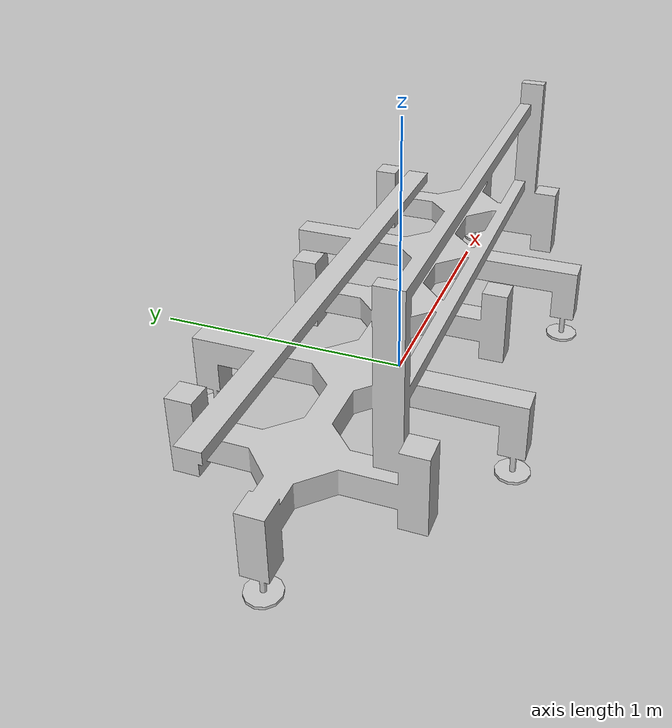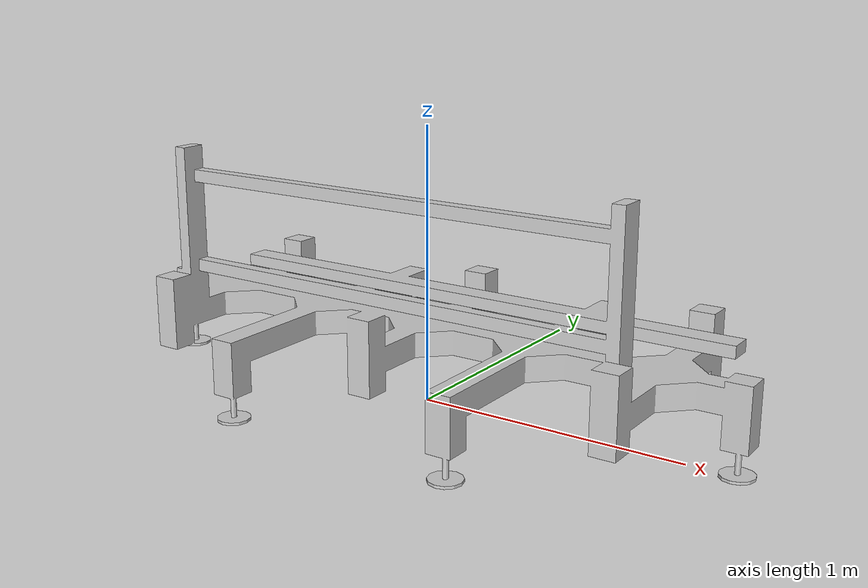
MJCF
<mujoco model="clr_base">
  <default>
    <default class="visual">
      <geom group="2" type="mesh" contype="0" conaffinity="0"/>
    </default>
    <default class="collision">
      <geom group="3" type="mesh"/>
    </default>
  </default>
  <asset>
    <material name="material_clr_base_0" specular="0.20000000000000004" shininess="1.0" rgba="0.80000000 0.80000000 0.80000000 1.0"/>
    <mesh file="clr_base.obj"/>
    <mesh file="clr_base_collision_0.obj"/>
    <mesh file="clr_base_collision_1.obj"/>
    <mesh file="clr_base_collision_2.obj"/>
    <mesh file="clr_base_collision_3.obj"/>
    <mesh file="clr_base_collision_4.obj"/>
    <mesh file="clr_base_collision_5.obj"/>
    <mesh file="clr_base_collision_6.obj"/>
    <mesh file="clr_base_collision_7.obj"/>
    <mesh file="clr_base_collision_8.obj"/>
    <mesh file="clr_base_collision_9.obj"/>
    <mesh file="clr_base_collision_10.obj"/>
    <mesh file="clr_base_collision_11.obj"/>
    <mesh file="clr_base_collision_12.obj"/>
    <mesh file="clr_base_collision_13.obj"/>
    <mesh file="clr_base_collision_14.obj"/>
    <mesh file="clr_base_collision_15.obj"/>
    <mesh file="clr_base_collision_16.obj"/>
    <mesh file="clr_base_collision_17.obj"/>
    <mesh file="clr_base_collision_18.obj"/>
    <mesh file="clr_base_collision_19.obj"/>
    <mesh file="clr_base_collision_20.obj"/>
    <mesh file="clr_base_collision_21.obj"/>
    <mesh file="clr_base_collision_22.obj"/>
    <mesh file="clr_base_collision_23.obj"/>
    <mesh file="clr_base_collision_24.obj"/>
    <mesh file="clr_base_collision_25.obj"/>
    <mesh file="clr_base_collision_26.obj"/>
    <mesh file="clr_base_collision_27.obj"/>
    <mesh file="clr_base_collision_28.obj"/>
    <mesh file="clr_base_collision_29.obj"/>
    <mesh file="clr_base_collision_30.obj"/>
    <mesh file="clr_base_collision_31.obj"/>
    <mesh file="clr_base_collision_32.obj"/>
    <mesh file="clr_base_collision_33.obj"/>
    <mesh file="clr_base_collision_34.obj"/>
    <mesh file="clr_base_collision_35.obj"/>
    <mesh file="clr_base_collision_36.obj"/>
    <mesh file="clr_base_collision_37.obj"/>
    <mesh file="clr_base_collision_38.obj"/>
    <mesh file="clr_base_collision_39.obj"/>
  </asset>
  <worldbody>
    <body name="clr_base">
      <geom material="material_clr_base_0" mesh="clr_base" class="visual"/>
      <geom mesh="clr_base_collision_0" rgba="0.23728208336753265 0.8837339614522822 0.4789133417869986 1" class="collision"/>
      <geom mesh="clr_base_collision_1" rgba="0.6173759947350166 0.03279250145005952 0.10456394978135986 1" class="collision"/>
      <geom mesh="clr_base_collision_2" rgba="0.5427670443089123 0.63429877919216 0.6933948060471649 1" class="collision"/>
      <geom mesh="clr_base_collision_3" rgba="0.6899701083233092 0.15321701945874922 0.8748295342780881 1" class="collision"/>
      <geom mesh="clr_base_collision_4" rgba="0.8762903190155746 0.8718929698158158 0.6423533024113812 1" class="collision"/>
      <geom mesh="clr_base_collision_5" rgba="0.8404434633868554 0.645353582265287 0.7876727997189373 1" class="collision"/>
      <geom mesh="clr_base_collision_6" rgba="0.7897195993233522 0.2746850850358933 0.04348513740007598 1" class="collision"/>
      <geom mesh="clr_base_collision_7" rgba="0.6239289503429335 0.7943208642108233 0.7457504134686068 1" class="collision"/>
      <geom mesh="clr_base_collision_8" rgba="0.42876655377728545 0.5021337394431165 0.10367319347495085 1" class="collision"/>
      <geom mesh="clr_base_collision_9" rgba="0.4897908363915594 0.7974960419295394 0.7729111733940598 1" class="collision"/>
      <geom mesh="clr_base_collision_10" rgba="0.5388226792939941 0.19203702318677018 0.5091999285474132 1" class="collision"/>
      <geom mesh="clr_base_collision_11" rgba="0.12820039431860064 0.8531994825821377 0.8571014555236797 1" class="collision"/>
      <geom mesh="clr_base_collision_12" rgba="0.09763251483783109 0.5066788227527523 0.7556474028714621 1" class="collision"/>
      <geom mesh="clr_base_collision_13" rgba="0.2807505926191094 0.37970763059757684 0.9112762504938852 1" class="collision"/>
      <geom mesh="clr_base_collision_14" rgba="0.7568742241255006 0.21009045574122065 0.14340510422176966 1" class="collision"/>
      <geom mesh="clr_base_collision_15" rgba="0.02242670140479719 0.046810239411094634 0.04234958415654588 1" class="collision"/>
      <geom mesh="clr_base_collision_16" rgba="0.7968079158780229 0.7456534328636901 0.6768077440874021 1" class="collision"/>
      <geom mesh="clr_base_collision_17" rgba="0.18564018873030808 0.1506586677402566 0.24413114200907837 1" class="collision"/>
      <geom mesh="clr_base_collision_18" rgba="0.8915580855130079 0.16872508756432358 0.06920357454416193 1" class="collision"/>
      <geom mesh="clr_base_collision_19" rgba="0.7717151009882982 0.7068383929209298 0.9925274683586638 1" class="collision"/>
      <geom mesh="clr_base_collision_20" rgba="0.06836758940744903 0.11798143335340805 0.8700980347144198 1" class="collision"/>
      <geom mesh="clr_base_collision_21" rgba="0.8779524553477366 0.11950617124200258 0.8280510110749467 1" class="collision"/>
      <geom mesh="clr_base_collision_22" rgba="0.9119327458214981 0.9846701390646883 0.23079762690637728 1" class="collision"/>
      <geom mesh="clr_base_collision_23" rgba="0.2510659176137482 0.23104605335981077 0.5954112051258786 1" class="collision"/>
      <geom mesh="clr_base_collision_24" rgba="0.3223867545418423 0.29913553164674844 0.3686508200584878 1" class="collision"/>
      <geom mesh="clr_base_collision_25" rgba="0.41838612238990014 0.3561147128798102 0.9644230612492786 1" class="collision"/>
      <geom mesh="clr_base_collision_26" rgba="0.33062056750551394 0.7027869067186919 0.05674386188255709 1" class="collision"/>
      <geom mesh="clr_base_collision_27" rgba="0.399822951974491 0.25025353262379624 0.3617054310067177 1" class="collision"/>
      <geom mesh="clr_base_collision_28" rgba="0.7608137926234249 0.03878945730797012 0.8079125284085351 1" class="collision"/>
      <geom mesh="clr_base_collision_29" rgba="0.7603533707001213 0.5992320204155116 0.5351098383362196 1" class="collision"/>
      <geom mesh="clr_base_collision_30" rgba="0.4212608869248211 0.06999337081974599 0.97066257841198 1" class="collision"/>
      <geom mesh="clr_base_collision_31" rgba="0.9585150874327188 0.34970191695629194 0.3105124340098534 1" class="collision"/>
      <geom mesh="clr_base_collision_32" rgba="0.1012126936173594 0.1012777259383123 0.0789883818134246 1" class="collision"/>
      <geom mesh="clr_base_collision_33" rgba="0.4904601549927412 0.42879716506234977 0.5338267965124696 1" class="collision"/>
      <geom mesh="clr_base_collision_34" rgba="0.22003290573978174 0.9806402660205992 0.7696925324412089 1" class="collision"/>
      <geom mesh="clr_base_collision_35" rgba="0.010064120293263201 0.904802258028546 0.7287178581995337 1" class="collision"/>
      <geom mesh="clr_base_collision_36" rgba="0.6162964028401089 0.8474050725257696 0.3884350254645781 1" class="collision"/>
      <geom mesh="clr_base_collision_37" rgba="0.6549203540311314 0.887485901573071 0.9430821435492002 1" class="collision"/>
      <geom mesh="clr_base_collision_38" rgba="0.8453881100703676 0.8346306144861873 0.24550009834893682 1" class="collision"/>
      <geom mesh="clr_base_collision_39" rgba="0.4965685953506751 0.9754235547701203 0.2682397405867398 1" class="collision"/>
    </body>
  </worldbody>
</mujoco>
